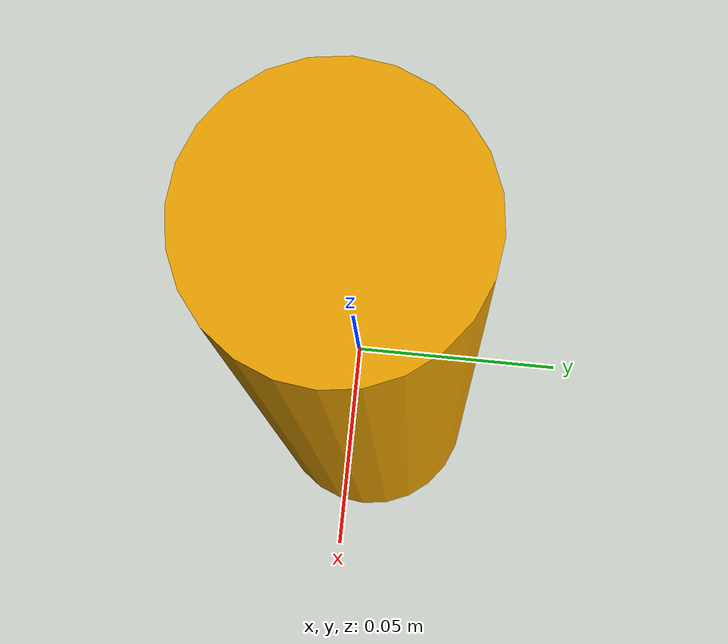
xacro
<?xml version="1.0"?>
<robot xmlns:xacro="http://www.ros.org/wiki/xacro" name="cylinder">

	<link name="cylinder">
		<inertial>
			<mass value="0.3"/>
			<!-- cylindrical shell : Izz=m*r^2; Ixx=Iyy=1/12*m*(6*r^2+h^2) -->
			<!-- solid cylinder : Izz=(m*r^2)/2; Ixx=Iyy=1/12*m*(3*r^2+h^2) -->
			<inertia  ixx="0.002385" ixy="0.00"  ixz="0.00" iyy="0.002385" iyz="0.00" izz="0.00027" />
		</inertial>
		<visual>
			<origin xyz="0 0 0" rpy="0 0 0"/>
			<geometry>
				<cylinder length="0.3" radius="0.03"/>
			</geometry>
		</visual>
		<collision>
			<origin xyz="0 0 0" rpy="0 0 0"/>
			<geometry>
				<cylinder length="0.3" radius="0.03"/>
			</geometry>
		</collision>
	</link>

</robot>
